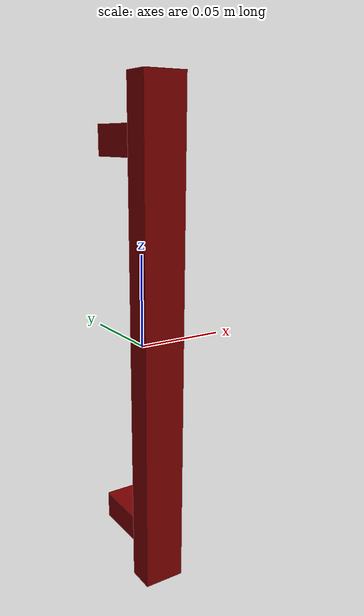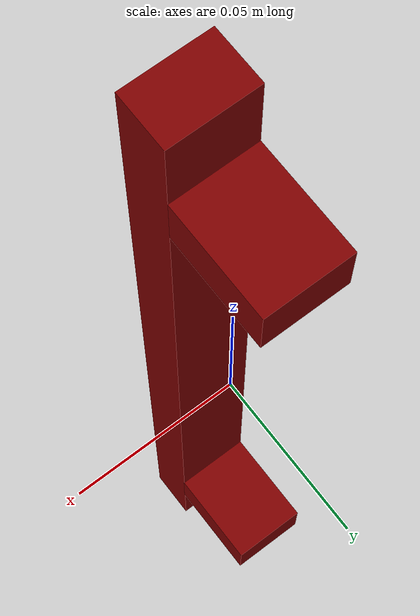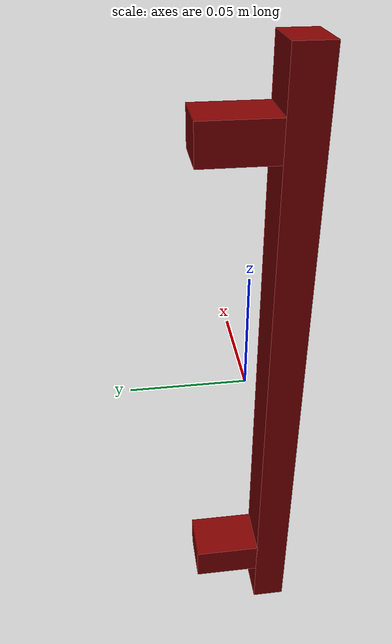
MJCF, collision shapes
<?xml version='1.0' encoding='UTF-8'?>
<mujoco model="model">
  <option timestep="0.002" gravity="0.0 0.0 -9.81"/>
  <compiler angle="radian"/>
  <asset>
    <mesh file="visuals/CabinetHandle003.obj" name="CabinetHandle003_vis"/>
    <texture file="visuals/T_BC001.png" name="tex" type="2d"/>
    <material name="mat" rgba="1 1 1 1.0" texture="tex" shininess="0.5" specular="0.3103448502657381"/>
  </asset>
  <default>
    <default class="visual">
      <geom conaffinity="0" contype="0" group="1" type="mesh"/>
    </default>
    <default class="collision">
      <geom group="0" rgba="0.5 0 0 0.5" density="1.0" solref="0.004 1" solimp="0.998 0.998 0.001"/>
    </default>
    <default class="spawn">
      <geom group="0" rgba="1 1 1 0.5" contype="0" conaffinity="0"/>
      <site group="0" rgba="1 1 1 0.5"/>
    </default>
    <default class="region">
      <geom group="1" conaffinity="0" contype="0" rgba="0 1 0 0" mass="0"/>
    </default>
  </default>
  <worldbody>
    <body>
      <body name="object">
        <geom mesh="CabinetHandle003_vis" type="mesh" solimp="0.998 0.998 0.001" solref="0.001 1" friction="0.95 0.3 0.1" class="visual" material="mat"/>
        <geom type="box" pos="0.0 -0.01527157612144947 0.0" size="0.011696524918079376 0.0077113197185099125 0.13754220306873322" quat="1.0 0.0 0.0 0.0" class="collision"/>
        <geom type="box" pos="-2.3449556242447345e-17 0.00762567576020956 0.10679837316274643" size="0.011696526780724525 0.015480552799999714 0.007874749600887299" quat="1.0 0.0 0.0 0.0" class="collision"/>
        <geom type="box" pos="-2.3449556242447345e-17 0.00762567576020956 -0.10669129341840744" size="0.011696524918079376 0.015480552799999714 0.007874749600887299" quat="1.0 0.0 0.0 0.0" class="collision"/>
        <geom class="region" name="reg_main" type="box" pos="0.0 0.0 0.0" size="0.012435028165578843 0.023870499640703202 0.13822099363803864"/>
      </body>
    </body>
  </worldbody>
  <actuator/>
</mujoco>
